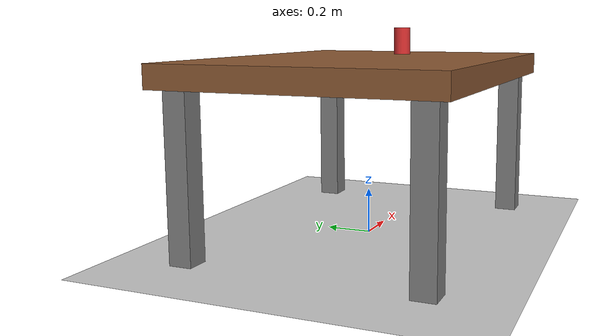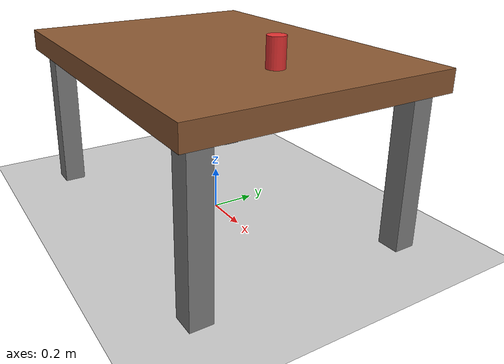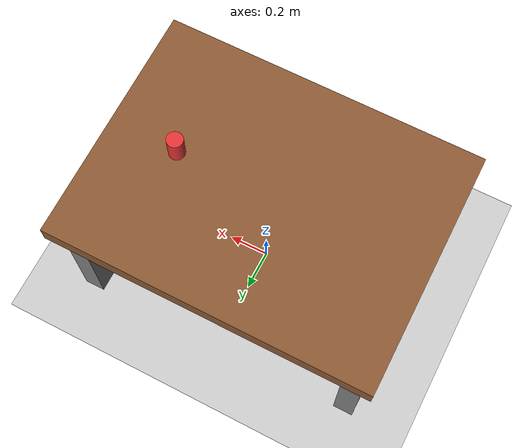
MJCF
<mujoco model="reachability_minimal">

    <compiler angle="degree"/>

    <option
        timestep="0.002"
        gravity="0 0 -9.81"
    />

    <visual>
        <global azimuth="135" elevation="-25"/>
    </visual>

    <worldbody>

        <!-- 地面 -->
        <geom
            name="floor"
            type="plane"
            size="5 5 0.1"
            rgba="0.8 0.8 0.8 1"
        />

        <!-- 桌面 -->
        <body
            name="table"
            pos="0 0 0"
        >
            <geom
                name="table_top"
                type="box"
                pos="0 0 0.75"
                size="0.8 0.6 0.05"
                rgba="0.55 0.35 0.2 1"
            />

            <!-- 四条桌腿 -->

            <geom
                name="leg_1"
                type="box"
                pos="0.7 0.5 0.35"
                size="0.05 0.05 0.35"
            />

            <geom
                name="leg_2"
                type="box"
                pos="-0.7 0.5 0.35"
                size="0.05 0.05 0.35"
            />

            <geom
                name="leg_3"
                type="box"
                pos="0.7 -0.5 0.35"
                size="0.05 0.05 0.35"
            />

            <geom
                name="leg_4"
                type="box"
                pos="-0.7 -0.5 0.35"
                size="0.05 0.05 0.35"
            />
        </body>

        <!-- 目标物体 -->
        <body
            name="target"
            pos="0.45 0 0.85"
        >

            <freejoint/>

            <geom
                name="target_geom"
                type="cylinder"
                size="0.04 0.08"
                mass="0.2"
                rgba="0.9 0.2 0.2 1"
            />

        </body>

    </worldbody>

</mujoco>
